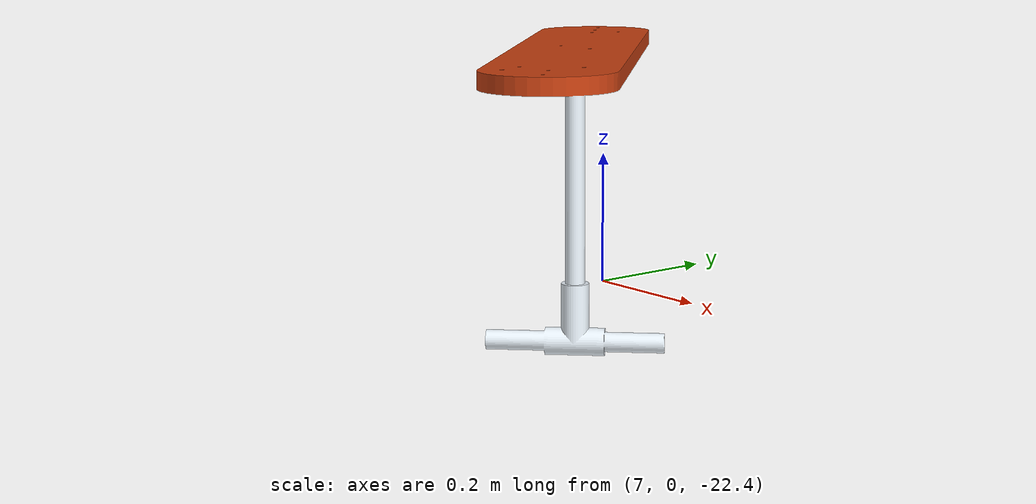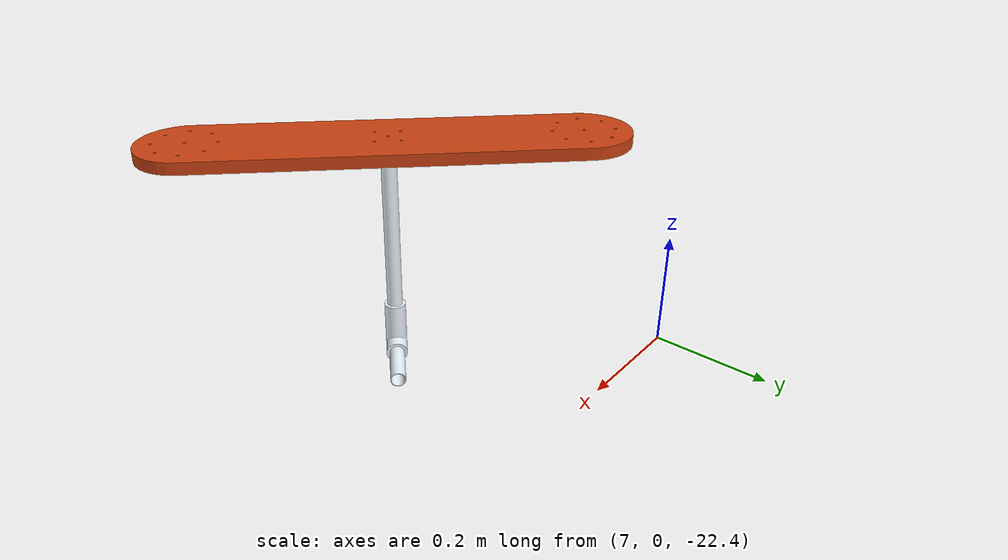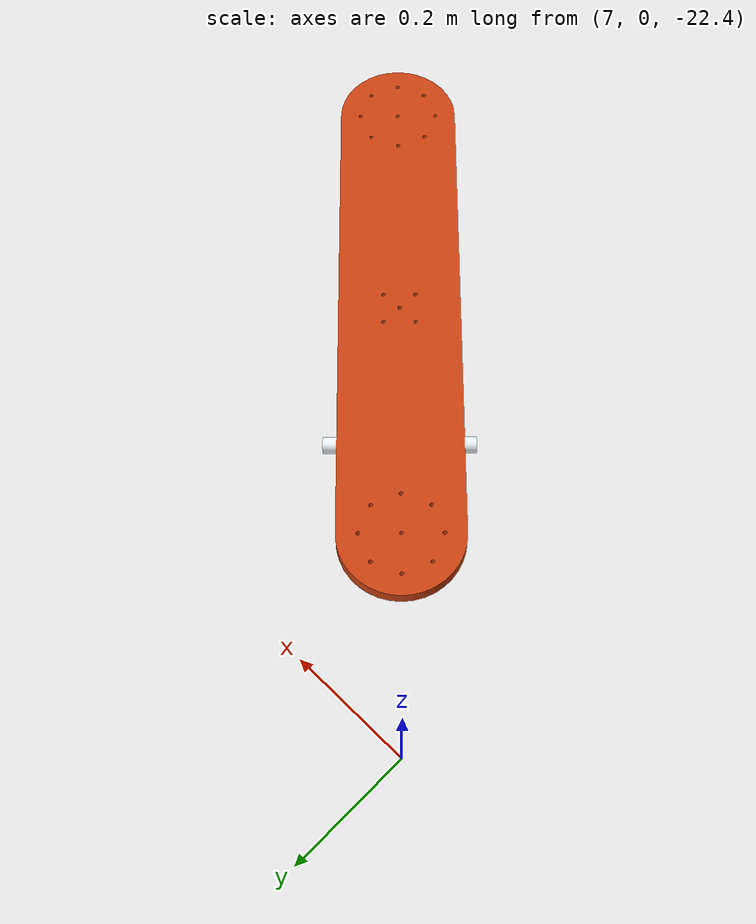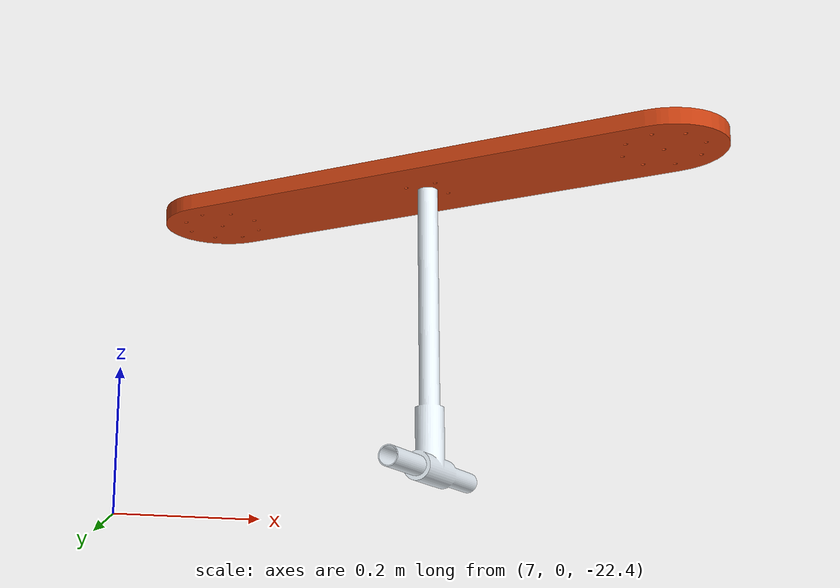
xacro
<?xml version="1.0"?>
<robot name="path_marker" xmlns:xacro="http://www.ros.org/wiki/xacro">

<!-- Introducir meshes -->
<xacro:property name="visual_mesh_file" value="file://$(find sim_challenges)/models/meshes/pathmarker.dae" />

<link name="path_marker_base">
    <visual>
        <origin xyz="7.00 0 -22.0" rpy="3.1416 0.0 0.0"/>
        <geometry>
            <mesh filename="${visual_mesh_file}" scale="1 1 1" />
        </geometry>
    </visual>

        <!-- Se deben cambiar los parametros reales-->
    <collision>
      <origin xyz="7.00 0 -22.0" rpy="3.1416 0.0 0.0"/>
      <geometry>
        <mesh filename="${visual_mesh_file}" scale="1 1 1" />
      </geometry>
    </collision>

    <inertial>
      <origin xyz="7.00 0 -22.0" rpy="3.1416 0.0 0.0"/>
      <mass value="1"/>
      <inertia
        ixx="1.0" ixy="0.0" ixz="0.0"
        iyy="1.0" iyz="0.0"
        izz="1.0"/>
    </inertial>
</link>
<gazebo reference="path_marker_base">
  <selfCollide>0</selfCollide>
  <turnGravityOff>1</turnGravityOff>
</gazebo>

</robot>
